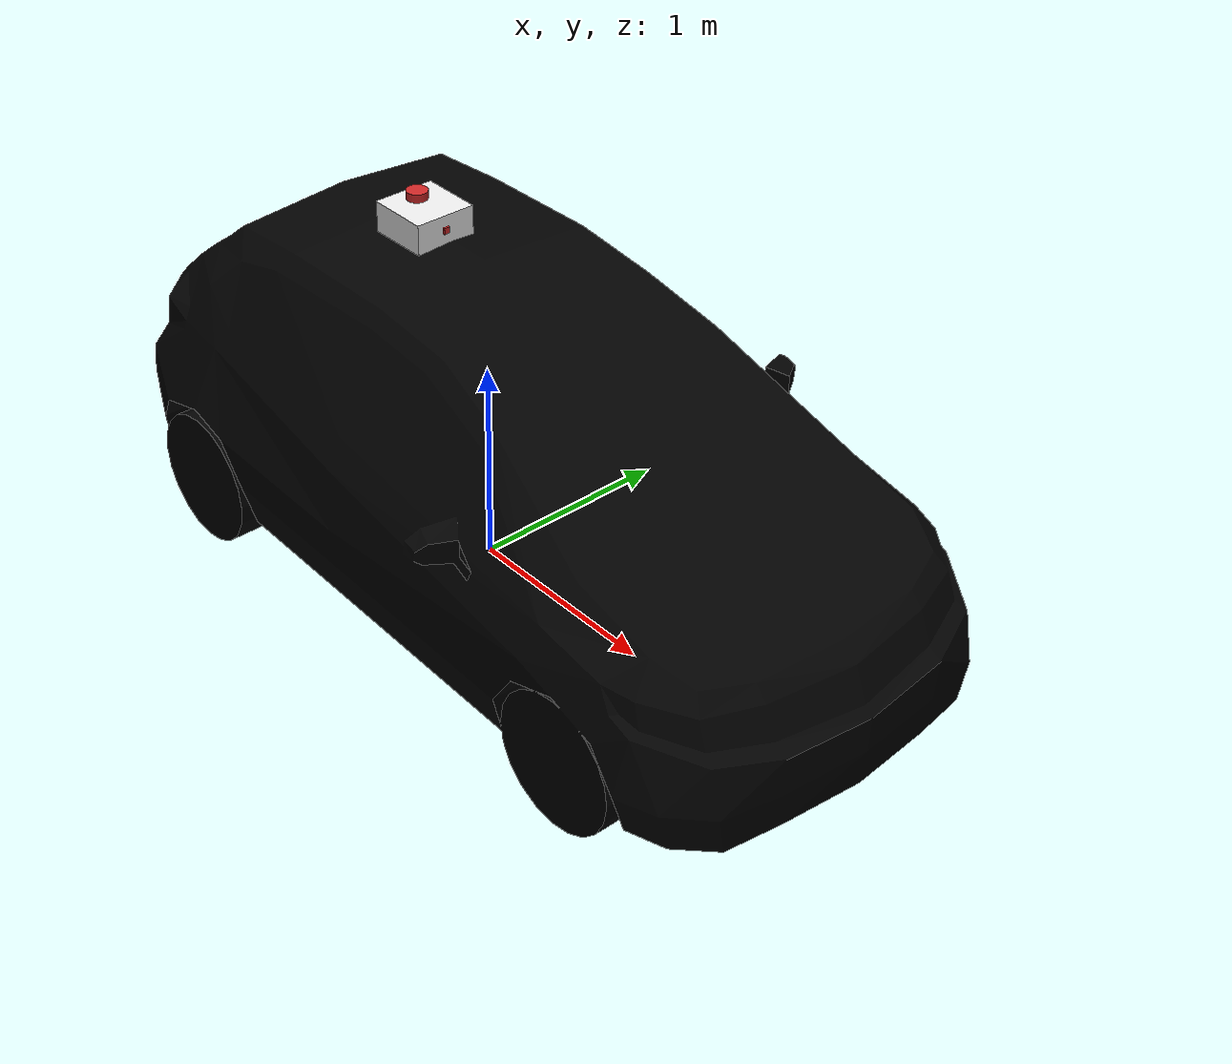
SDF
<?xml version='1.0'?>
<sdf version='1.7'>
  <model name='bc_01'>
    <link name='link'>
      <self_collide>1</self_collide>
      <enable_wind>0</enable_wind>
      <kinematic>1</kinematic>
      <pose>0 0 0 0 -0 0</pose>
      <gravity>1</gravity>
      <inertial>
        <mass>1</mass>
        <pose>0 0 0 0 -0 0</pose>
        <inertia>
          <ixx>1</ixx>
          <ixy>0</ixy>
          <ixz>0</ixz>
          <iyy>1</iyy>
          <iyz>0</iyz>
          <izz>1</izz>
        </inertia>
      </inertial>
      <visual name='visual'>
        <pose>0 0 0 0 -0 1.5708</pose>
        <geometry>
          <mesh>
            <scale>0.0254 0.0254 0.0254</scale>
            <uri>model://hatchback/meshes/hatchback.obj</uri>
          </mesh>
        </geometry>
        <material>
          <shader type='pixel'>
            <normal_map>__default__</normal_map>
          </shader>
          <emissive>0 0 0 1</emissive>
          <script>
            <name>ModelPreview_1::link::visual_MATERIAL_</name>
          </script>
          <ambient>0 0 0 1</ambient>
          <diffuse>0 0 0 1</diffuse>
          <specular>0 0 0 1</specular>
        </material>
        <transparency>0</transparency>
        <cast_shadows>1</cast_shadows>
      </visual>
      <collision name='collision_4'>
        <laser_retro>0</laser_retro>
        <max_contacts>10</max_contacts>
        <pose>0 0 0 0 -0 0</pose>
        <geometry>
          <box>
            <size>2.14046 4.0011 1.56789</size>
          </box>
        </geometry>
        <surface>
          <friction>
            <ode>
              <mu>1</mu>
              <mu2>1</mu2>
              <fdir1>0 0 0</fdir1>
              <slip1>0</slip1>
              <slip2>0</slip2>
            </ode>
            <torsional>
              <coefficient>1</coefficient>
              <patch_radius>0</patch_radius>
              <surface_radius>0</surface_radius>
              <use_patch_radius>1</use_patch_radius>
              <ode>
                <slip>0</slip>
              </ode>
            </torsional>
          </friction>
          <bounce>
            <restitution_coefficient>0</restitution_coefficient>
            <threshold>1e+06</threshold>
          </bounce>
          <contact>
            <collide_without_contact>0</collide_without_contact>
            <collide_without_contact_bitmask>1</collide_without_contact_bitmask>
            <collide_bitmask>1</collide_bitmask>
            <ode>
              <soft_cfm>0</soft_cfm>
              <soft_erp>0.2</soft_erp>
              <kp>1e+13</kp>
              <kd>1</kd>
              <max_vel>0.01</max_vel>
              <min_depth>0</min_depth>
            </ode>
            <bullet>
              <split_impulse>1</split_impulse>
              <split_impulse_penetration_threshold>-0.01</split_impulse_penetration_threshold>
              <soft_cfm>0</soft_cfm>
              <soft_erp>0.2</soft_erp>
              <kp>1e+13</kp>
              <kd>1</kd>
            </bullet>
          </contact>
        </surface>
      </collision>
      <collision name='collision'>
        <laser_retro>0</laser_retro>
        <max_contacts>10</max_contacts>
        <pose>0 0 0 0 -0 1.5708</pose>
        <geometry>
          <mesh>
            <uri>/home/amadeus/.gazebo/models/hatchback/meshes/hatchback.obj</uri>
            <scale>0.0254 0.0254 0.0254</scale>
          </mesh>
        </geometry>
        <surface>
          <friction>
            <ode>
              <mu>1</mu>
              <mu2>1</mu2>
              <fdir1>0 0 0</fdir1>
              <slip1>0</slip1>
              <slip2>0</slip2>
            </ode>
            <torsional>
              <coefficient>1</coefficient>
              <patch_radius>0</patch_radius>
              <surface_radius>0</surface_radius>
              <use_patch_radius>1</use_patch_radius>
              <ode>
                <slip>0</slip>
              </ode>
            </torsional>
          </friction>
          <bounce>
            <restitution_coefficient>0</restitution_coefficient>
            <threshold>1e+06</threshold>
          </bounce>
          <contact>
            <collide_without_contact>0</collide_without_contact>
            <collide_without_contact_bitmask>1</collide_without_contact_bitmask>
            <collide_bitmask>1</collide_bitmask>
            <ode>
              <soft_cfm>0</soft_cfm>
              <soft_erp>0.2</soft_erp>
              <kp>1e+13</kp>
              <kd>1</kd>
              <max_vel>0.01</max_vel>
              <min_depth>0</min_depth>
            </ode>
            <bullet>
              <split_impulse>1</split_impulse>
              <split_impulse_penetration_threshold>-0.01</split_impulse_penetration_threshold>
              <soft_cfm>0</soft_cfm>
              <soft_erp>0.2</soft_erp>
              <kp>1e+13</kp>
              <kd>1</kd>
            </bullet>
          </contact>
        </surface>
      </collision>
    </link>
    <model name='my_bot'>
      <link name='base_link'>
        <inertial>
          <pose>0.041667 0 0.091667 0 -0 0</pose>
          <mass>0.6</mass>
          <inertia>
            <ixx>0.00559667</ixx>
            <ixy>0</ixy>
            <ixz>0.000416667</ixz>
            <iyy>0.005805</iyy>
            <iyz>0</iyz>
            <izz>0.00783333</izz>
          </inertia>
        </inertial>
        <sensor name='camera' type='camera'>
          <visualize>1</visualize>
          <update_rate>10</update_rate>
          <camera>
            <horizontal_fov>1.089</horizontal_fov>
            <image>
              <format>R8G8B8</format>
              <width>1920</width>
              <height>1080</height>
            </image>
            <clip>
              <near>0.05</near>
              <far>30</far>
            </clip>
          </camera>
          <plugin name='camera_controller' filename='libgazebo_ros_camera.so'>
            <frame_name>camera_link_optical</frame_name>
          </plugin>
          <pose>0.205 0 0.08 0 -0 0</pose>
        </sensor>
        <sensor name='laser' type='ray'>
          <visualize>0</visualize>
          <update_rate>10</update_rate>
          <ray>
            <scan>
              <horizontal>
                <samples>360</samples>
                <min_angle>-3.14</min_angle>
                <max_angle>3.14</max_angle>
                <resolution>1</resolution>
              </horizontal>
              <vertical>
                <samples>1</samples>
                <min_angle>0</min_angle>
                <max_angle>0</max_angle>
              </vertical>
            </scan>
            <range>
              <min>0.3</min>
              <max>12</max>
            </range>
          </ray>
          <plugin name='laser_controller' filename='libgazebo_ros_ray_sensor.so'>
            <ros>
              <argument>~/out:=scan</argument>
            </ros>
            <output_type>sensor_msgs/LaserScan</output_type>
            <frame_name>laser_frame</frame_name>
          </plugin>
          <pose>0 0 0.175 0 -0 0</pose>
        </sensor>
        <self_collide>0</self_collide>
        <enable_wind>0</enable_wind>
        <kinematic>0</kinematic>
        <pose>0 0 0 0 -0 0</pose>
        <visual name='base_link_fixed_joint_lump__chassis_visual'>
          <pose>0.05 0 0.075 0 -0 0</pose>
          <geometry>
            <box>
              <size>0.3 0.3 0.15</size>
            </box>
          </geometry>
          <material>
            <script>
              <name>Gazebo/White</name>
              <uri>file://media/materials/scripts/gazebo.material</uri>
            </script>
            <shader type='pixel'/>
          </material>
          <transparency>0</transparency>
          <cast_shadows>1</cast_shadows>
        </visual>
        <visual name='base_link_fixed_joint_lump__camera_link_visual_1'>
          <pose>0.205 0 0.08 0 -0 0</pose>
          <geometry>
            <box>
              <size>0.01 0.03 0.03</size>
            </box>
          </geometry>
          <material>
            <script>
              <name>Gazebo/Red</name>
              <uri>file://media/materials/scripts/gazebo.material</uri>
            </script>
            <shader type='pixel'/>
          </material>
          <transparency>0</transparency>
          <cast_shadows>1</cast_shadows>
        </visual>
        <visual name='base_link_fixed_joint_lump__laser_frame_visual_2'>
          <pose>0 0 0.175 0 -0 0</pose>
          <geometry>
            <cylinder>
              <length>0.04</length>
              <radius>0.05</radius>
            </cylinder>
          </geometry>
          <material>
            <script>
              <name>Gazebo/Red</name>
              <uri>file://media/materials/scripts/gazebo.material</uri>
            </script>
            <shader type='pixel'/>
          </material>
          <transparency>0</transparency>
          <cast_shadows>1</cast_shadows>
        </visual>
        <collision name='base_link_fixed_joint_lump__chassis_collision'>
          <laser_retro>0</laser_retro>
          <max_contacts>10</max_contacts>
          <pose>0.05 0 0.075 0 -0 0</pose>
          <geometry>
            <box>
              <size>0.3 0.3 0.15</size>
            </box>
          </geometry>
          <surface>
            <friction>
              <ode>
                <mu>1</mu>
                <mu2>1</mu2>
                <fdir1>0 0 0</fdir1>
                <slip1>0</slip1>
                <slip2>0</slip2>
              </ode>
              <torsional>
                <coefficient>1</coefficient>
                <patch_radius>0</patch_radius>
                <surface_radius>0</surface_radius>
                <use_patch_radius>1</use_patch_radius>
                <ode>
                  <slip>0</slip>
                </ode>
              </torsional>
            </friction>
            <bounce>
              <restitution_coefficient>0</restitution_coefficient>
              <threshold>1e+06</threshold>
            </bounce>
            <contact>
              <collide_without_contact>0</collide_without_contact>
              <collide_without_contact_bitmask>1</collide_without_contact_bitmask>
              <collide_bitmask>1</collide_bitmask>
              <ode>
                <soft_cfm>0</soft_cfm>
                <soft_erp>0.2</soft_erp>
                <kp>1e+13</kp>
                <kd>1</kd>
                <max_vel>0.01</max_vel>
                <min_depth>0</min_depth>
              </ode>
              <bullet>
                <split_impulse>1</split_impulse>
                <split_impulse_penetration_threshold>-0.01</split_impulse_penetration_threshold>
                <soft_cfm>0</soft_cfm>
                <soft_erp>0.2</soft_erp>
                <kp>1e+13</kp>
                <kd>1</kd>
              </bullet>
            </contact>
          </surface>
        </collision>
        <collision name='base_link_fixed_joint_lump__laser_frame_collision_1'>
          <laser_retro>0</laser_retro>
          <max_contacts>10</max_contacts>
          <pose>0 0 0.175 0 -0 0</pose>
          <geometry>
            <cylinder>
              <radius>0.05</radius>
              <length>0.04</length>
            </cylinder>
          </geometry>
          <surface>
            <friction>
              <ode>
                <mu>1</mu>
                <mu2>1</mu2>
                <fdir1>0 0 0</fdir1>
                <slip1>0</slip1>
                <slip2>0</slip2>
              </ode>
              <torsional>
                <coefficient>1</coefficient>
                <patch_radius>0</patch_radius>
                <surface_radius>0</surface_radius>
                <use_patch_radius>1</use_patch_radius>
                <ode>
                  <slip>0</slip>
                </ode>
              </torsional>
            </friction>
            <bounce>
              <restitution_coefficient>0</restitution_coefficient>
              <threshold>1e+06</threshold>
            </bounce>
            <contact>
              <collide_without_contact>0</collide_without_contact>
              <collide_without_contact_bitmask>1</collide_without_contact_bitmask>
              <collide_bitmask>1</collide_bitmask>
              <ode>
                <soft_cfm>0</soft_cfm>
                <soft_erp>0.2</soft_erp>
                <kp>1e+13</kp>
                <kd>1</kd>
                <max_vel>0.01</max_vel>
                <min_depth>0</min_depth>
              </ode>
              <bullet>
                <split_impulse>1</split_impulse>
                <split_impulse_penetration_threshold>-0.01</split_impulse_penetration_threshold>
                <soft_cfm>0</soft_cfm>
                <soft_erp>0.2</soft_erp>
                <kp>1e+13</kp>
                <kd>1</kd>
              </bullet>
            </contact>
          </surface>
        </collision>
      </link>
      <static>0</static>
      <allow_auto_disable>1</allow_auto_disable>
      <plugin name='diff_drive' filename='libgazebo_ros_diff_drive.so'>
        <left_joint>left_wheel_joint</left_joint>
        <right_joint>right_wheel_joint</right_joint>
        <wheel_separation>0.35</wheel_separation>
        <wheel_diameter>0.1</wheel_diameter>
        <max_wheel_torque>200</max_wheel_torque>
        <max_wheel_acceleration>50.0</max_wheel_acceleration>
        <odometry_frame>odom</odometry_frame>
        <robot_base_frame>base_link</robot_base_frame>
        <publish_odom>1</publish_odom>
        <publish_odom_tf>1</publish_odom_tf>
        <publish_wheel_tf>1</publish_wheel_tf>
      </plugin>
      <pose>-0.433624 -0.033893 1.53826 0 -0 0</pose>
    </model>
    <joint name='link_JOINT_0' type='screw'>
      <parent>roof_link</parent>
      <child>my_bot::base_link</child>
      <pose>0 0 0 0 -0 0</pose>
      <axis>
        <xyz expressed_in='__model__'>1 0 0</xyz>
        <limit>
          <lower>-1.79769e+308</lower>
          <upper>1.79769e+308</upper>
          <effort>-1</effort>
          <velocity>-1</velocity>
        </limit>
        <dynamics>
          <spring_reference>0</spring_reference>
          <spring_stiffness>0</spring_stiffness>
          <damping>0</damping>
          <friction>0</friction>
        </dynamics>
      </axis>
      <physics>
        <ode>
          <limit>
            <cfm>0</cfm>
            <erp>0.2</erp>
          </limit>
          <suspension>
            <cfm>0</cfm>
            <erp>0.2</erp>
          </suspension>
        </ode>
      </physics>
    </joint>
    <static>1</static>
    <allow_auto_disable>1</allow_auto_disable>
    <plugin name='model_move' filename='/home/amadeus/Downloads/dev_ws/src/articubot_one/worlds/build/libmodel_move.so'/>
  </model>
</sdf>
